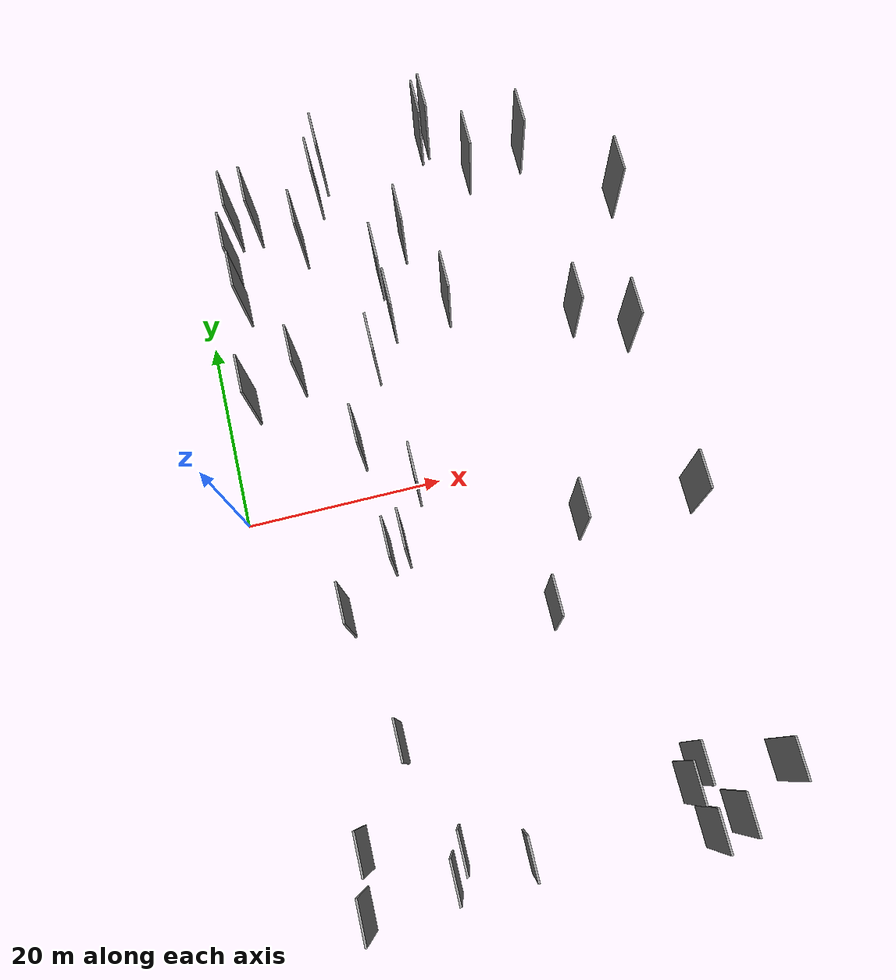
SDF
<sdf version="1.6">
 <world name="default">
  <scene>
   <sky><clouds><speed>12</speed></clouds></sky>
   <ambient>0.4 0.4 0.4 1</ambient>
   <background>0.7 0.7 0.7 1</background>
   <shadows>1</shadows>
  </scene>
  <gravity>0 0 -9.8066</gravity>
  <magnetic_field>6e-06 2.3e-05 -4.2e-05</magnetic_field>
  <physics default="0" name="default_physics" type="ode">
   <ode>
    <solver>
     <type>quick</type>
     <iters>10</iters>
     <sor>1.0</sor>
     <use_dynamic_moi_rescaling>0</use_dynamic_moi_rescaling>
    </solver>
    <constraints>
     <cfm>0</cfm>
     <erp>0.2</erp>
     <contact_max_correcting_vel>100</contact_max_correcting_vel>
     <contact_surface_layer>0.001</contact_surface_layer>
    </constraints>
   </ode>
   <max_step_size>0.004</max_step_size>
   <real_time_factor>1</real_time_factor>
   <real_time_update_rate>250</real_time_update_rate>
  </physics>
  <light name="sun" type="directional">
   <pose>0 0 10 0 0 0</pose>
   <diffuse>0.8 0.8 0.8 1</diffuse>
   <specular>0.2 0.2 0.2 1</specular>
   <attenuation>
    <range>1000</range>
    <constant>0.9</constant>
    <linear>0.01</linear>
    <quadratic>0.001</quadratic>
   </attenuation>
   <direction>-0.5 0.1 -0.9</direction>
  </light>
  <model name="grey_wall_1">
   <static>1</static>
   <pose>19.1370 18.1087 0.0 0.000000 0.000000 1.570796</pose>
   <link name="link">
    <pose>0 0 5.00 0 0 0</pose>
    <collision name="collision"><geometry><box><size>4.00 0.2 10.00</size></box></geometry></collision>
    <visual name="visual">
     <cast_shadows>0</cast_shadows>
     <geometry><box><size>4.00 0.2 10.00</size></box></geometry>
     <material>
      <script>
       <uri>model://grey_wall/materials/scripts</uri>
       <uri>model://grey_wall/materials/textures</uri>
       <name>vrc/grey_wall</name>
      </script>
     </material>
    </visual>
   </link>
  </model>
  <model name="grey_wall_2">
   <static>1</static>
   <pose>19.7315 -37.1187 0.0 0.000000 0.000000 1.570796</pose>
   <link name="link">
    <pose>0 0 5.00 0 0 0</pose>
    <collision name="collision"><geometry><box><size>4.00 0.2 10.00</size></box></geometry></collision>
    <visual name="visual">
     <cast_shadows>0</cast_shadows>
     <geometry><box><size>4.00 0.2 10.00</size></box></geometry>
     <material>
      <script>
       <uri>model://grey_wall/materials/scripts</uri>
       <uri>model://grey_wall/materials/textures</uri>
       <name>vrc/grey_wall</name>
      </script>
     </material>
    </visual>
   </link>
  </model>
  <model name="grey_wall_3">
   <static>1</static>
   <pose>3.2431 12.4929 0.0 0.000000 0.000000 1.570796</pose>
   <link name="link">
    <pose>0 0 5.00 0 0 0</pose>
    <collision name="collision"><geometry><box><size>4.00 0.2 10.00</size></box></geometry></collision>
    <visual name="visual">
     <cast_shadows>0</cast_shadows>
     <geometry><box><size>4.00 0.2 10.00</size></box></geometry>
     <material>
      <script>
       <uri>model://grey_wall/materials/scripts</uri>
       <uri>model://grey_wall/materials/textures</uri>
       <name>vrc/grey_wall</name>
      </script>
     </material>
    </visual>
   </link>
  </model>
  <model name="grey_wall_4">
   <static>1</static>
   <pose>35.3643 -34.5909 0.0 0.000000 0.000000 1.570796</pose>
   <link name="link">
    <pose>0 0 5.00 0 0 0</pose>
    <collision name="collision"><geometry><box><size>4.00 0.2 10.00</size></box></geometry></collision>
    <visual name="visual">
     <cast_shadows>0</cast_shadows>
     <geometry><box><size>4.00 0.2 10.00</size></box></geometry>
     <material>
      <script>
       <uri>model://grey_wall/materials/scripts</uri>
       <uri>model://grey_wall/materials/textures</uri>
       <name>vrc/grey_wall</name>
      </script>
     </material>
    </visual>
   </link>
  </model>
  <model name="grey_wall_5">
   <static>1</static>
   <pose>17.5887 -0.2086 0.0 0.000000 0.000000 1.570796</pose>
   <link name="link">
    <pose>0 0 5.00 0 0 0</pose>
    <collision name="collision"><geometry><box><size>4.00 0.2 10.00</size></box></geometry></collision>
    <visual name="visual">
     <cast_shadows>0</cast_shadows>
     <geometry><box><size>4.00 0.2 10.00</size></box></geometry>
     <material>
      <script>
       <uri>model://grey_wall/materials/scripts</uri>
       <uri>model://grey_wall/materials/textures</uri>
       <name>vrc/grey_wall</name>
      </script>
     </material>
    </visual>
   </link>
  </model>
  <model name="grey_wall_6">
   <static>1</static>
   <pose>16.4084 13.7615 0.0 0.000000 0.000000 1.570796</pose>
   <link name="link">
    <pose>0 0 5.00 0 0 0</pose>
    <collision name="collision"><geometry><box><size>4.00 0.2 10.00</size></box></geometry></collision>
    <visual name="visual">
     <cast_shadows>0</cast_shadows>
     <geometry><box><size>4.00 0.2 10.00</size></box></geometry>
     <material>
      <script>
       <uri>model://grey_wall/materials/scripts</uri>
       <uri>model://grey_wall/materials/textures</uri>
       <name>vrc/grey_wall</name>
      </script>
     </material>
    </visual>
   </link>
  </model>
  <model name="grey_wall_7">
   <static>1</static>
   <pose>37.7608 14.1524 0.0 0.000000 0.000000 1.570796</pose>
   <link name="link">
    <pose>0 0 5.00 0 0 0</pose>
    <collision name="collision"><geometry><box><size>4.00 0.2 10.00</size></box></geometry></collision>
    <visual name="visual">
     <cast_shadows>0</cast_shadows>
     <geometry><box><size>4.00 0.2 10.00</size></box></geometry>
     <material>
      <script>
       <uri>model://grey_wall/materials/scripts</uri>
       <uri>model://grey_wall/materials/textures</uri>
       <name>vrc/grey_wall</name>
      </script>
     </material>
    </visual>
   </link>
  </model>
  <model name="grey_wall_8">
   <static>1</static>
   <pose>43.0211 11.1134 0.0 0.000000 0.000000 1.570796</pose>
   <link name="link">
    <pose>0 0 5.00 0 0 0</pose>
    <collision name="collision"><geometry><box><size>4.00 0.2 10.00</size></box></geometry></collision>
    <visual name="visual">
     <cast_shadows>0</cast_shadows>
     <geometry><box><size>4.00 0.2 10.00</size></box></geometry>
     <material>
      <script>
       <uri>model://grey_wall/materials/scripts</uri>
       <uri>model://grey_wall/materials/textures</uri>
       <name>vrc/grey_wall</name>
      </script>
     </material>
    </visual>
   </link>
  </model>
  <model name="grey_wall_9">
   <static>1</static>
   <pose>27.6352 39.2542 0.0 0.000000 0.000000 1.570796</pose>
   <link name="link">
    <pose>0 0 5.00 0 0 0</pose>
    <collision name="collision"><geometry><box><size>4.00 0.2 10.00</size></box></geometry></collision>
    <visual name="visual">
     <cast_shadows>0</cast_shadows>
     <geometry><box><size>4.00 0.2 10.00</size></box></geometry>
     <material>
      <script>
       <uri>model://grey_wall/materials/scripts</uri>
       <uri>model://grey_wall/materials/textures</uri>
       <name>vrc/grey_wall</name>
      </script>
     </material>
    </visual>
   </link>
  </model>
  <model name="grey_wall_10">
   <static>1</static>
   <pose>5.3457 -33.1951 0.0 0.000000 0.000000 1.570796</pose>
   <link name="link">
    <pose>0 0 5.00 0 0 0</pose>
    <collision name="collision"><geometry><box><size>4.00 0.2 10.00</size></box></geometry></collision>
    <visual name="visual">
     <cast_shadows>0</cast_shadows>
     <geometry><box><size>4.00 0.2 10.00</size></box></geometry>
     <material>
      <script>
       <uri>model://grey_wall/materials/scripts</uri>
       <uri>model://grey_wall/materials/textures</uri>
       <name>vrc/grey_wall</name>
      </script>
     </material>
    </visual>
   </link>
  </model>
  <model name="grey_wall_11">
   <static>1</static>
   <pose>44.3338 -7.5655 0.0 0.000000 0.000000 1.570796</pose>
   <link name="link">
    <pose>0 0 5.00 0 0 0</pose>
    <collision name="collision"><geometry><box><size>4.00 0.2 10.00</size></box></geometry></collision>
    <visual name="visual">
     <cast_shadows>0</cast_shadows>
     <geometry><box><size>4.00 0.2 10.00</size></box></geometry>
     <material>
      <script>
       <uri>model://grey_wall/materials/scripts</uri>
       <uri>model://grey_wall/materials/textures</uri>
       <name>vrc/grey_wall</name>
      </script>
     </material>
    </visual>
   </link>
  </model>
  <model name="grey_wall_12">
   <static>1</static>
   <pose>32.4670 -7.5167 0.0 0.000000 0.000000 1.570796</pose>
   <link name="link">
    <pose>0 0 5.00 0 0 0</pose>
    <collision name="collision"><geometry><box><size>4.00 0.2 10.00</size></box></geometry></collision>
    <visual name="visual">
     <cast_shadows>0</cast_shadows>
     <geometry><box><size>4.00 0.2 10.00</size></box></geometry>
     <material>
      <script>
       <uri>model://grey_wall/materials/scripts</uri>
       <uri>model://grey_wall/materials/textures</uri>
       <name>vrc/grey_wall</name>
      </script>
     </material>
    </visual>
   </link>
  </model>
  <model name="grey_wall_13">
   <static>1</static>
   <pose>45.7846 27.0314 0.0 0.000000 0.000000 1.570796</pose>
   <link name="link">
    <pose>0 0 5.00 0 0 0</pose>
    <collision name="collision"><geometry><box><size>4.00 0.2 10.00</size></box></geometry></collision>
    <visual name="visual">
     <cast_shadows>0</cast_shadows>
     <geometry><box><size>4.00 0.2 10.00</size></box></geometry>
     <material>
      <script>
       <uri>model://grey_wall/materials/scripts</uri>
       <uri>model://grey_wall/materials/textures</uri>
       <name>vrc/grey_wall</name>
      </script>
     </material>
    </visual>
   </link>
  </model>
  <model name="grey_wall_14">
   <static>1</static>
   <pose>13.5777 -6.6819 0.0 0.000000 0.000000 1.570796</pose>
   <link name="link">
    <pose>0 0 5.00 0 0 0</pose>
    <collision name="collision"><geometry><box><size>4.00 0.2 10.00</size></box></geometry></collision>
    <visual name="visual">
     <cast_shadows>0</cast_shadows>
     <geometry><box><size>4.00 0.2 10.00</size></box></geometry>
     <material>
      <script>
       <uri>model://grey_wall/materials/scripts</uri>
       <uri>model://grey_wall/materials/textures</uri>
       <name>vrc/grey_wall</name>
      </script>
     </material>
    </visual>
   </link>
  </model>
  <model name="grey_wall_15">
   <static>1</static>
   <pose>18.9090 23.3441 0.0 0.000000 0.000000 1.570796</pose>
   <link name="link">
    <pose>0 0 5.00 0 0 0</pose>
    <collision name="collision"><geometry><box><size>4.00 0.2 10.00</size></box></geometry></collision>
    <visual name="visual">
     <cast_shadows>0</cast_shadows>
     <geometry><box><size>4.00 0.2 10.00</size></box></geometry>
     <material>
      <script>
       <uri>model://grey_wall/materials/scripts</uri>
       <uri>model://grey_wall/materials/textures</uri>
       <name>vrc/grey_wall</name>
      </script>
     </material>
    </visual>
   </link>
  </model>
  <model name="grey_wall_16">
   <static>1</static>
   <pose>4.3807 23.7181 0.0 0.000000 0.000000 1.570796</pose>
   <link name="link">
    <pose>0 0 5.00 0 0 0</pose>
    <collision name="collision"><geometry><box><size>4.00 0.2 10.00</size></box></geometry></collision>
    <visual name="visual">
     <cast_shadows>0</cast_shadows>
     <geometry><box><size>4.00 0.2 10.00</size></box></geometry>
     <material>
      <script>
       <uri>model://grey_wall/materials/scripts</uri>
       <uri>model://grey_wall/materials/textures</uri>
       <name>vrc/grey_wall</name>
      </script>
     </material>
    </visual>
   </link>
  </model>
  <model name="grey_wall_17">
   <static>1</static>
   <pose>4.4644 -38.5228 0.0 0.000000 0.000000 1.570796</pose>
   <link name="link">
    <pose>0 0 5.00 0 0 0</pose>
    <collision name="collision"><geometry><box><size>4.00 0.2 10.00</size></box></geometry></collision>
    <visual name="visual">
     <cast_shadows>0</cast_shadows>
     <geometry><box><size>4.00 0.2 10.00</size></box></geometry>
     <material>
      <script>
       <uri>model://grey_wall/materials/scripts</uri>
       <uri>model://grey_wall/materials/textures</uri>
       <name>vrc/grey_wall</name>
      </script>
     </material>
    </visual>
   </link>
  </model>
  <model name="grey_wall_18">
   <static>1</static>
   <pose>22.2404 27.0013 0.0 0.000000 0.000000 1.570796</pose>
   <link name="link">
    <pose>0 0 5.00 0 0 0</pose>
    <collision name="collision"><geometry><box><size>4.00 0.2 10.00</size></box></geometry></collision>
    <visual name="visual">
     <cast_shadows>0</cast_shadows>
     <geometry><box><size>4.00 0.2 10.00</size></box></geometry>
     <material>
      <script>
       <uri>model://grey_wall/materials/scripts</uri>
       <uri>model://grey_wall/materials/textures</uri>
       <name>vrc/grey_wall</name>
      </script>
     </material>
    </visual>
   </link>
  </model>
  <model name="grey_wall_19">
   <static>1</static>
   <pose>37.2279 34.9495 0.0 0.000000 0.000000 1.570796</pose>
   <link name="link">
    <pose>0 0 5.00 0 0 0</pose>
    <collision name="collision"><geometry><box><size>4.00 0.2 10.00</size></box></geometry></collision>
    <visual name="visual">
     <cast_shadows>0</cast_shadows>
     <geometry><box><size>4.00 0.2 10.00</size></box></geometry>
     <material>
      <script>
       <uri>model://grey_wall/materials/scripts</uri>
       <uri>model://grey_wall/materials/textures</uri>
       <name>vrc/grey_wall</name>
      </script>
     </material>
    </visual>
   </link>
  </model>
  <model name="grey_wall_20">
   <static>1</static>
   <pose>11.6564 29.0144 0.0 0.000000 0.000000 1.570796</pose>
   <link name="link">
    <pose>0 0 5.00 0 0 0</pose>
    <collision name="collision"><geometry><box><size>4.00 0.2 10.00</size></box></geometry></collision>
    <visual name="visual">
     <cast_shadows>0</cast_shadows>
     <geometry><box><size>4.00 0.2 10.00</size></box></geometry>
     <material>
      <script>
       <uri>model://grey_wall/materials/scripts</uri>
       <uri>model://grey_wall/materials/textures</uri>
       <name>vrc/grey_wall</name>
      </script>
     </material>
    </visual>
   </link>
  </model>
  <model name="grey_wall_21">
   <static>1</static>
   <pose>13.9996 -35.2255 0.0 0.000000 0.000000 1.570796</pose>
   <link name="link">
    <pose>0 0 5.00 0 0 0</pose>
    <collision name="collision"><geometry><box><size>4.00 0.2 10.00</size></box></geometry></collision>
    <visual name="visual">
     <cast_shadows>0</cast_shadows>
     <geometry><box><size>4.00 0.2 10.00</size></box></geometry>
     <material>
      <script>
       <uri>model://grey_wall/materials/scripts</uri>
       <uri>model://grey_wall/materials/textures</uri>
       <name>vrc/grey_wall</name>
      </script>
     </material>
    </visual>
   </link>
  </model>
  <model name="grey_wall_22">
   <static>1</static>
   <pose>44.6532 -34.7596 0.0 0.000000 0.000000 1.570796</pose>
   <link name="link">
    <pose>0 0 5.00 0 0 0</pose>
    <collision name="collision"><geometry><box><size>4.00 0.2 10.00</size></box></geometry></collision>
    <visual name="visual">
     <cast_shadows>0</cast_shadows>
     <geometry><box><size>4.00 0.2 10.00</size></box></geometry>
     <material>
      <script>
       <uri>model://grey_wall/materials/scripts</uri>
       <uri>model://grey_wall/materials/textures</uri>
       <name>vrc/grey_wall</name>
      </script>
     </material>
    </visual>
   </link>
  </model>
  <model name="grey_wall_23">
   <static>1</static>
   <pose>12.8703 -37.3537 0.0 0.000000 0.000000 1.570796</pose>
   <link name="link">
    <pose>0 0 5.00 0 0 0</pose>
    <collision name="collision"><geometry><box><size>4.00 0.2 10.00</size></box></geometry></collision>
    <visual name="visual">
     <cast_shadows>0</cast_shadows>
     <geometry><box><size>4.00 0.2 10.00</size></box></geometry>
     <material>
      <script>
       <uri>model://grey_wall/materials/scripts</uri>
       <uri>model://grey_wall/materials/textures</uri>
       <name>vrc/grey_wall</name>
      </script>
     </material>
    </visual>
   </link>
  </model>
  <model name="grey_wall_24">
   <static>1</static>
   <pose>8.4963 14.4028 0.0 0.000000 0.000000 1.570796</pose>
   <link name="link">
    <pose>0 0 5.00 0 0 0</pose>
    <collision name="collision"><geometry><box><size>4.00 0.2 10.00</size></box></geometry></collision>
    <visual name="visual">
     <cast_shadows>0</cast_shadows>
     <geometry><box><size>4.00 0.2 10.00</size></box></geometry>
     <material>
      <script>
       <uri>model://grey_wall/materials/scripts</uri>
       <uri>model://grey_wall/materials/textures</uri>
       <name>vrc/grey_wall</name>
      </script>
     </material>
    </visual>
   </link>
  </model>
  <model name="grey_wall_25">
   <static>1</static>
   <pose>4.2167 28.1523 0.0 0.000000 0.000000 1.570796</pose>
   <link name="link">
    <pose>0 0 5.00 0 0 0</pose>
    <collision name="collision"><geometry><box><size>4.00 0.2 10.00</size></box></geometry></collision>
    <visual name="visual">
     <cast_shadows>0</cast_shadows>
     <geometry><box><size>4.00 0.2 10.00</size></box></geometry>
     <material>
      <script>
       <uri>model://grey_wall/materials/scripts</uri>
       <uri>model://grey_wall/materials/textures</uri>
       <name>vrc/grey_wall</name>
      </script>
     </material>
    </visual>
   </link>
  </model>
  <model name="grey_wall_26">
   <static>1</static>
   <pose>15.1355 -6.2408 0.0 0.000000 0.000000 1.570796</pose>
   <link name="link">
    <pose>0 0 5.00 0 0 0</pose>
    <collision name="collision"><geometry><box><size>4.00 0.2 10.00</size></box></geometry></collision>
    <visual name="visual">
     <cast_shadows>0</cast_shadows>
     <geometry><box><size>4.00 0.2 10.00</size></box></geometry>
     <material>
      <script>
       <uri>model://grey_wall/materials/scripts</uri>
       <uri>model://grey_wall/materials/textures</uri>
       <name>vrc/grey_wall</name>
      </script>
     </material>
    </visual>
   </link>
  </model>
  <model name="grey_wall_27">
   <static>1</static>
   <pose>31.0925 33.7276 0.0 0.000000 0.000000 1.570796</pose>
   <link name="link">
    <pose>0 0 5.00 0 0 0</pose>
    <collision name="collision"><geometry><box><size>4.00 0.2 10.00</size></box></geometry></collision>
    <visual name="visual">
     <cast_shadows>0</cast_shadows>
     <geometry><box><size>4.00 0.2 10.00</size></box></geometry>
     <material>
      <script>
       <uri>model://grey_wall/materials/scripts</uri>
       <uri>model://grey_wall/materials/textures</uri>
       <name>vrc/grey_wall</name>
      </script>
     </material>
    </visual>
   </link>
  </model>
  <model name="grey_wall_28">
   <static>1</static>
   <pose>15.5711 37.3441 0.0 0.000000 0.000000 1.570796</pose>
   <link name="link">
    <pose>0 0 5.00 0 0 0</pose>
    <collision name="collision"><geometry><box><size>4.00 0.2 10.00</size></box></geometry></collision>
    <visual name="visual">
     <cast_shadows>0</cast_shadows>
     <geometry><box><size>4.00 0.2 10.00</size></box></geometry>
     <material>
      <script>
       <uri>model://grey_wall/materials/scripts</uri>
       <uri>model://grey_wall/materials/textures</uri>
       <name>vrc/grey_wall</name>
      </script>
     </material>
    </visual>
   </link>
  </model>
  <model name="grey_wall_29">
   <static>1</static>
   <pose>36.5148 -33.0948 0.0 0.000000 0.000000 1.570796</pose>
   <link name="link">
    <pose>0 0 5.00 0 0 0</pose>
    <collision name="collision"><geometry><box><size>4.00 0.2 10.00</size></box></geometry></collision>
    <visual name="visual">
     <cast_shadows>0</cast_shadows>
     <geometry><box><size>4.00 0.2 10.00</size></box></geometry>
     <material>
      <script>
       <uri>model://grey_wall/materials/scripts</uri>
       <uri>model://grey_wall/materials/textures</uri>
       <name>vrc/grey_wall</name>
      </script>
     </material>
    </visual>
   </link>
  </model>
  <model name="grey_wall_30">
   <static>1</static>
   <pose>10.6923 -24.7757 0.0 0.000000 0.000000 1.570796</pose>
   <link name="link">
    <pose>0 0 5.00 0 0 0</pose>
    <collision name="collision"><geometry><box><size>4.00 0.2 10.00</size></box></geometry></collision>
    <visual name="visual">
     <cast_shadows>0</cast_shadows>
     <geometry><box><size>4.00 0.2 10.00</size></box></geometry>
     <material>
      <script>
       <uri>model://grey_wall/materials/scripts</uri>
       <uri>model://grey_wall/materials/textures</uri>
       <name>vrc/grey_wall</name>
      </script>
     </material>
    </visual>
   </link>
  </model>
  <model name="grey_wall_31">
   <static>1</static>
   <pose>7.2647 32.7920 0.0 0.000000 0.000000 1.570796</pose>
   <link name="link">
    <pose>0 0 5.00 0 0 0</pose>
    <collision name="collision"><geometry><box><size>4.00 0.2 10.00</size></box></geometry></collision>
    <visual name="visual">
     <cast_shadows>0</cast_shadows>
     <geometry><box><size>4.00 0.2 10.00</size></box></geometry>
     <material>
      <script>
       <uri>model://grey_wall/materials/scripts</uri>
       <uri>model://grey_wall/materials/textures</uri>
       <name>vrc/grey_wall</name>
      </script>
     </material>
    </visual>
   </link>
  </model>
  <model name="grey_wall_32">
   <static>1</static>
   <pose>5.0823 32.8019 0.0 0.000000 0.000000 1.570796</pose>
   <link name="link">
    <pose>0 0 5.00 0 0 0</pose>
    <collision name="collision"><geometry><box><size>4.00 0.2 10.00</size></box></geometry></collision>
    <visual name="visual">
     <cast_shadows>0</cast_shadows>
     <geometry><box><size>4.00 0.2 10.00</size></box></geometry>
     <material>
      <script>
       <uri>model://grey_wall/materials/scripts</uri>
       <uri>model://grey_wall/materials/textures</uri>
       <name>vrc/grey_wall</name>
      </script>
     </material>
    </visual>
   </link>
  </model>
  <model name="grey_wall_33">
   <static>1</static>
   <pose>8.2478 -11.7069 0.0 0.000000 0.000000 1.570796</pose>
   <link name="link">
    <pose>0 0 5.00 0 0 0</pose>
    <collision name="collision"><geometry><box><size>4.00 0.2 10.00</size></box></geometry></collision>
    <visual name="visual">
     <cast_shadows>0</cast_shadows>
     <geometry><box><size>4.00 0.2 10.00</size></box></geometry>
     <material>
      <script>
       <uri>model://grey_wall/materials/scripts</uri>
       <uri>model://grey_wall/materials/textures</uri>
       <name>vrc/grey_wall</name>
      </script>
     </material>
    </visual>
   </link>
  </model>
  <model name="grey_wall_34">
   <static>1</static>
   <pose>12.9662 4.8580 0.0 0.000000 0.000000 1.570796</pose>
   <link name="link">
    <pose>0 0 5.00 0 0 0</pose>
    <collision name="collision"><geometry><box><size>4.00 0.2 10.00</size></box></geometry></collision>
    <visual name="visual">
     <cast_shadows>0</cast_shadows>
     <geometry><box><size>4.00 0.2 10.00</size></box></geometry>
     <material>
      <script>
       <uri>model://grey_wall/materials/scripts</uri>
       <uri>model://grey_wall/materials/textures</uri>
       <name>vrc/grey_wall</name>
      </script>
     </material>
    </visual>
   </link>
  </model>
  <model name="grey_wall_35">
   <static>1</static>
   <pose>27.6523 -15.7785 0.0 0.000000 0.000000 1.570796</pose>
   <link name="link">
    <pose>0 0 5.00 0 0 0</pose>
    <collision name="collision"><geometry><box><size>4.00 0.2 10.00</size></box></geometry></collision>
    <visual name="visual">
     <cast_shadows>0</cast_shadows>
     <geometry><box><size>4.00 0.2 10.00</size></box></geometry>
     <material>
      <script>
       <uri>model://grey_wall/materials/scripts</uri>
       <uri>model://grey_wall/materials/textures</uri>
       <name>vrc/grey_wall</name>
      </script>
     </material>
    </visual>
   </link>
  </model>
  <model name="grey_wall_36">
   <static>1</static>
   <pose>36.2583 -38.8908 0.0 0.000000 0.000000 1.570796</pose>
   <link name="link">
    <pose>0 0 5.00 0 0 0</pose>
    <collision name="collision"><geometry><box><size>4.00 0.2 10.00</size></box></geometry></collision>
    <visual name="visual">
     <cast_shadows>0</cast_shadows>
     <geometry><box><size>4.00 0.2 10.00</size></box></geometry>
     <material>
      <script>
       <uri>model://grey_wall/materials/scripts</uri>
       <uri>model://grey_wall/materials/textures</uri>
       <name>vrc/grey_wall</name>
      </script>
     </material>
    </visual>
   </link>
  </model>
  <model name="grey_wall_37">
   <static>1</static>
   <pose>14.4879 34.5662 0.0 0.000000 0.000000 1.570796</pose>
   <link name="link">
    <pose>0 0 5.00 0 0 0</pose>
    <collision name="collision"><geometry><box><size>4.00 0.2 10.00</size></box></geometry></collision>
    <visual name="visual">
     <cast_shadows>0</cast_shadows>
     <geometry><box><size>4.00 0.2 10.00</size></box></geometry>
     <material>
      <script>
       <uri>model://grey_wall/materials/scripts</uri>
       <uri>model://grey_wall/materials/textures</uri>
       <name>vrc/grey_wall</name>
      </script>
     </material>
    </visual>
   </link>
  </model>
  <model name="grey_wall_38">
   <static>1</static>
   <pose>39.0471 -38.1693 0.0 0.000000 0.000000 1.570796</pose>
   <link name="link">
    <pose>0 0 5.00 0 0 0</pose>
    <collision name="collision"><geometry><box><size>4.00 0.2 10.00</size></box></geometry></collision>
    <visual name="visual">
     <cast_shadows>0</cast_shadows>
     <geometry><box><size>4.00 0.2 10.00</size></box></geometry>
     <material>
      <script>
       <uri>model://grey_wall/materials/scripts</uri>
       <uri>model://grey_wall/materials/textures</uri>
       <name>vrc/grey_wall</name>
      </script>
     </material>
    </visual>
   </link>
  </model>
  <model name="grey_wall_39">
   <static>1</static>
   <pose>25.1548 18.5324 0.0 0.000000 0.000000 1.570796</pose>
   <link name="link">
    <pose>0 0 5.00 0 0 0</pose>
    <collision name="collision"><geometry><box><size>4.00 0.2 10.00</size></box></geometry></collision>
    <visual name="visual">
     <cast_shadows>0</cast_shadows>
     <geometry><box><size>4.00 0.2 10.00</size></box></geometry>
     <material>
      <script>
       <uri>model://grey_wall/materials/scripts</uri>
       <uri>model://grey_wall/materials/textures</uri>
       <name>vrc/grey_wall</name>
      </script>
     </material>
    </visual>
   </link>
  </model>
  <model name="grey_wall_40">
   <static>1</static>
   <pose>26.7889 38.6594 0.0 0.000000 0.000000 1.570796</pose>
   <link name="link">
    <pose>0 0 5.00 0 0 0</pose>
    <collision name="collision"><geometry><box><size>4.00 0.2 10.00</size></box></geometry></collision>
    <visual name="visual">
     <cast_shadows>0</cast_shadows>
     <geometry><box><size>4.00 0.2 10.00</size></box></geometry>
     <material>
      <script>
       <uri>model://grey_wall/materials/scripts</uri>
       <uri>model://grey_wall/materials/textures</uri>
       <name>vrc/grey_wall</name>
      </script>
     </material>
    </visual>
   </link>
  </model>
 </world>
</sdf>
